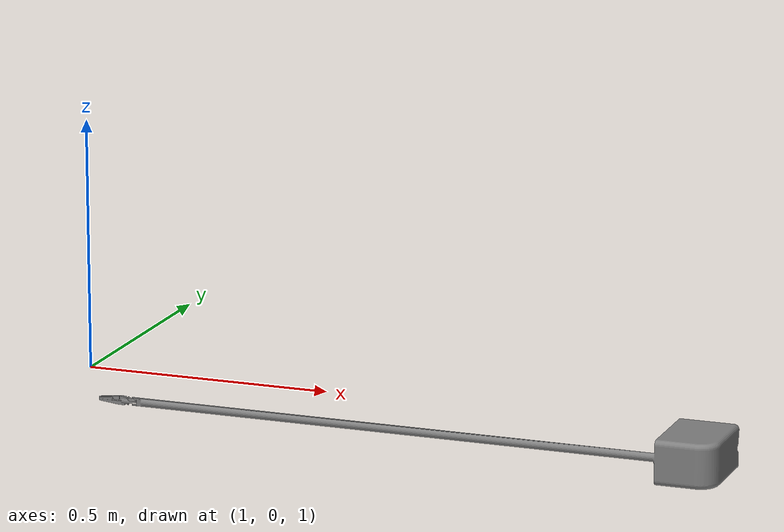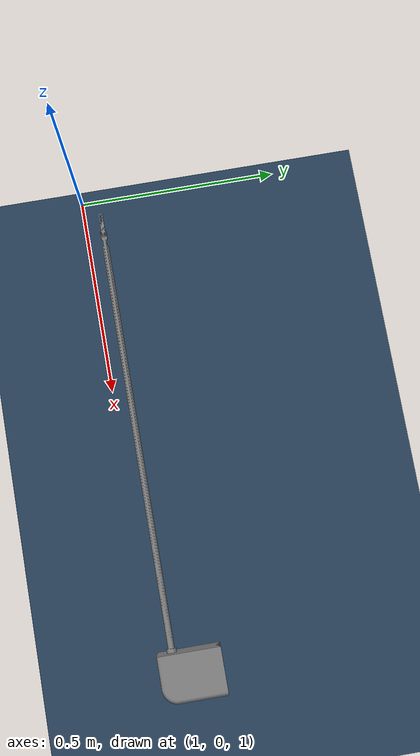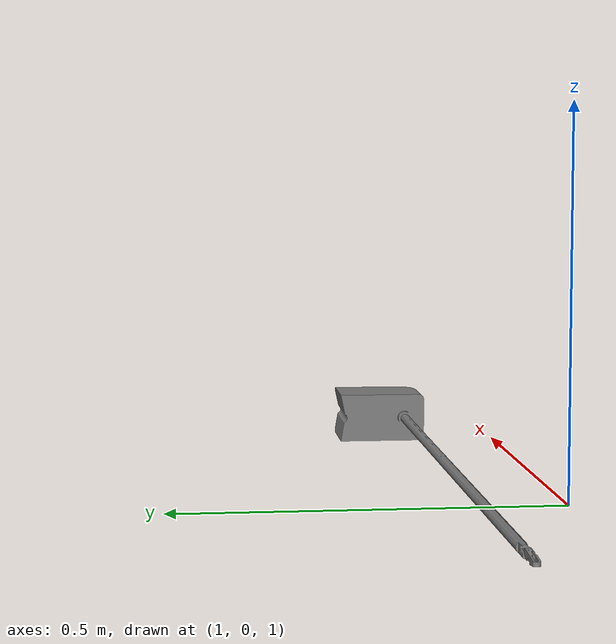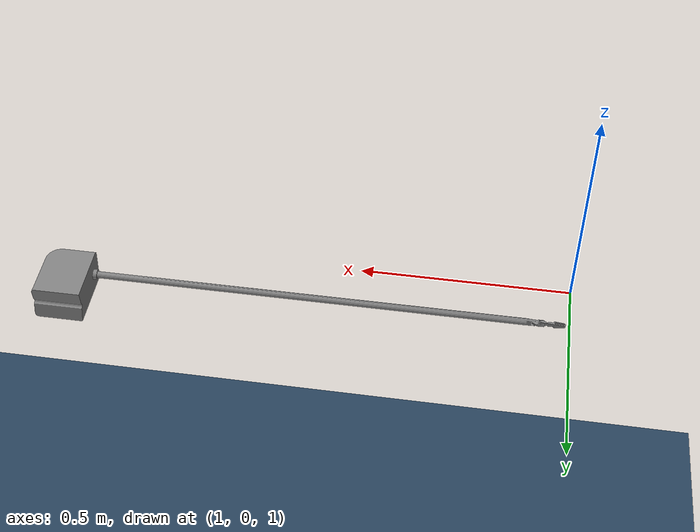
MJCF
<?xml version="1.0" encoding="UTF-8"?>
<mujoco model="panda scene">
  <compiler angle="radian" meshdir="assets"/>
  <statistic center="0.3 0 0.4" extent="1"/>

  <visual>
    <headlight diffuse="0.6 0.6 0.6"  ambient="0.3 0.3 0.3" specular="0 0 0"/>
    <rgba haze="0.15 0.25 0.35 1"/>
    <global azimuth="120" elevation="-20"/>
  </visual>

  <default>
    <default class="visual">
      <geom type="mesh" contype="0" conaffinity="0" group="2"/>
    </default>
    <default class="collision">
      <geom type="mesh" group="3"/>
    </default>
  </default>

  <asset>
    <texture type="skybox" builtin="gradient" rgb1="0.3 0.5 0.7" rgb2="0 0 0" width="512" height="3072"/>
    <texture type="2d" name="groundplane" builtin="checker" mark="edge" rgb1="0.2 0.3 0.4" rgb2="0.1 0.2 0.3" markrgb="0.8 0.8 0.8" width="300" height="300"/>
    <material name="groundplane" texture="groundplane" texuniform="true" texrepeat="5 5" reflectance="0.2"/>
    <!-- Add the endowrist visual and collision meshes -->
    <mesh name="endowrist_visual" file="Endowrist_resize_500.STL"/>
    <mesh name="endowrist_collision" file="Endowrist_resize_500.STL"/>
  </asset>

  <worldbody>
    <light pos="0 0 1.5" dir="0 0 -1" directional="true"/>
    <geom name="floor" size="0 0 0.05" type="plane" material="groundplane"/>

    <!-- Add a table -->

    <!-- Place the endowrist model on the table -->
    <body name="endowristbody" pos="1 0 0.85" quat="1 0 0 0" gravcomp="1">
      <geom name="endowrist_geom_visual" type="mesh" mesh="endowrist_visual" class="visual" size="0.1 0.1 0.1 "/>
      <geom name="endowrist_geom_collision" type="mesh" mesh="endowrist_collision" class="collision" size="0.1 0.1  0.1 "/>
    </body>
  </worldbody>
</mujoco>
